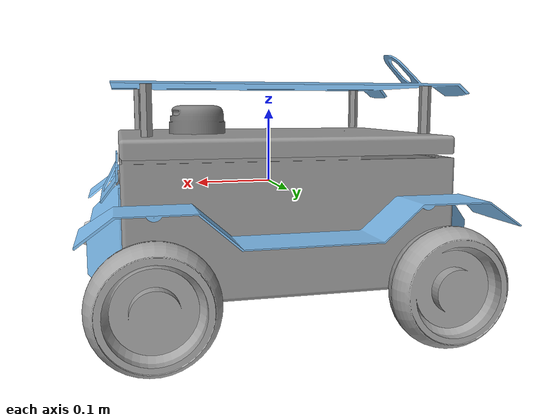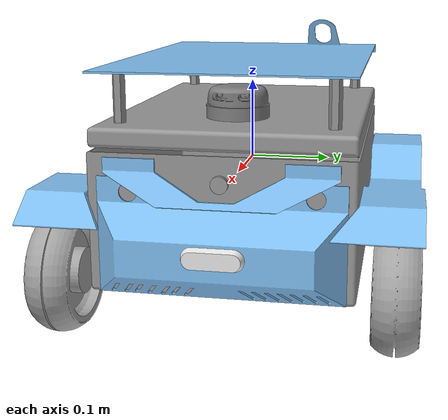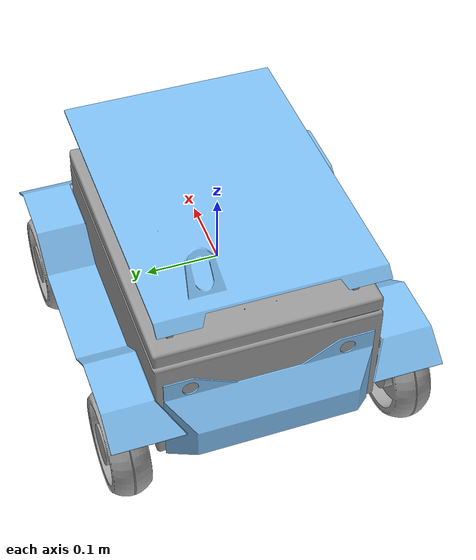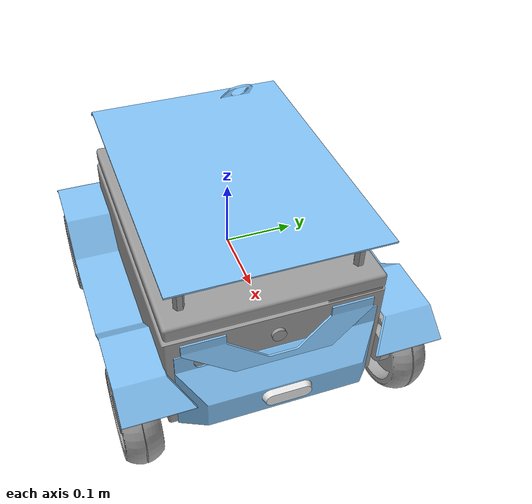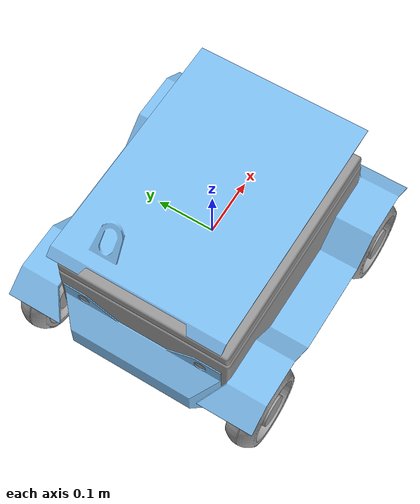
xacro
<robot name="solverbot" xmlns:xacro="http://www.ros.org/wiki/xacro">
  <!-- over here we include the file that defines extra Gazebo options and motion control driver -->
  <xacro:include filename="inertial_macros.xacro"/>
  <xacro:include filename="lidar.xacro"/>
  <xacro:include filename="solver_body.xacro"/>
  <xacro:include filename="camera.xacro"/>

</robot>

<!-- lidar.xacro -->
<robot  xmlns:xacro="http://www.ros.org/wiki/xacro">

  <xacro:property name="pi_const" value="3.14159265"/>

  <joint name="laser_joint" type="fixed">
    <origin xyz="0.1 0 0.095" rpy="0.0 0.0 0"/>
    <parent link="body_link"/>
    <child link="laser_frame"/>
    <axis xyz="0.0 0.0 0.0"/>
  </joint>
  <link name="laser_frame">
    <visual>
      <geometry>
        <mesh filename="package://solver_description/meshes/lidar_am12.stl"/>
      </geometry>
      <origin rpy="0 0 ${pi_const/2}" xyz="0 0 -0.03"/>
      <material name="red">
        <color rgba="0.5 0.5 0.5 1.0"/>
      </material>
    </visual>
    <collision>
      <geometry>
        <cylinder radius="0.05" length="0.04"/>
      </geometry>
    </collision>
    <xacro:inertial_cylinder mass="0.1" length="0.04" radius="0.05">
      <origin xyz="0.0 0.0 0.0" rpy="0.0 0.0 0.0"/>

    </xacro:inertial_cylinder>

  </link>
  <gazebo reference="laser_frame">
    <material>Gazebo/Grey</material>
    <sensor name="laser_frame" type="ray">
      <pose>0 0 0 0 0 0</pose>
      <visualize>true</visualize>
      <update_rate>10</update_rate>
      <ray>
        <scan>
          <horizontal>
            <samples>720</samples>
            <resolution>1</resolution>
            <min_angle>-3.14</min_angle>
            <max_angle>3.14</max_angle>
          </horizontal>
        </scan>
        <range>
          <min>0.4</min>
          <max>10</max>
          <resolution>0.01</resolution>
        </range>
      </ray>
      <plugin name="laser_controller" filename="libgazebo_ros_laser.so">
        <topicName>scan</topicName>
        <robotNamespace>/</robotNamespace>
        <frameName>laser_frame</frameName>
      </plugin>
    </sensor>
  </gazebo>
</robot>

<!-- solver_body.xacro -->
<robot name="solverBot_body" xmlns:xacro="http://www.ros.org/wiki/xacro">

  <!-- constants mio -->

  <xacro:property name="pi_const" value="3.14159265"/>

  <!-- Body dimensions -->

  <xacro:property name="body_link_x_dim" value="0.429"/>
  <xacro:property name="body_link_y_dim" value="0.335"/>
  <xacro:property name="body_link_z_dim" value="0.346"/>
  <xacro:property name="body_volume" value="${body_link_x_dim * body_link_y_dim * body_link_z_dim}"/>

  <!-- wheel dimensions -->

  <xacro:property name="wheel_link_radius" value="0.0755"/>
  <xacro:property name="wheel_link_length" value="0.055"/>
  <xacro:property name="wheel_link_z_location" value="-0.110"/>
  <xacro:property name="wheel_link_radius_sq" value="${wheel_link_radius * wheel_link_radius}"/>

  <xacro:property name="wheel_volume" value="${pi_const * wheel_link_radius_sq * wheel_link_length }"/>
  <xacro:property name="wheel_mesh" value="package://solver_description/meshes/wheelv3.dae"/>

  <!-- material density -->

  <xacro:property name="body_density" value="131.20"/>
  <xacro:property name="wheel_density" value="837.23"/>

  <!-- robot body and wheel mass -->

  <xacro:property name="body_mass" value="${body_density * body_volume}"/>
  <xacro:property name="wheel_mass" value="${wheel_density * wheel_volume}"/>

  <!-- moments of inertia of the wheel -->

  <xacro:property name="Iz_wheel" value="${0.5 * wheel_mass * wheel_link_radius_sq}"/>
  <xacro:property name="I_wheel" value="-${(1.0/12.0) * wheel_mass * (3.0 * wheel_link_radius_sq + wheel_link_length * wheel_link_length)}"/>

  <!-- This macro defines the complete inertial section of the wheel -->
  <!-- it's used later in the code -->

  <xacro:macro name="inertia_wheel">
      <inertial>
          <origin rpy="0 0 0" xyz="0 0 0"/>
          <mass value="${wheel_mass}"/>
          <inertia ixx="0.0013393845833333333" ixy="0.0" ixz="0.0" iyy="0.0013393845833333333" iyz="0.0" izz="0.0023371024999999995"/>
      </inertial>

  </xacro:macro>

  <!-- over here we include the file that defines extra Gazebo options and motion control driver -->
  <xacro:include filename="robot.gazebo"/>

  <!-- from here link and joints definitions -->

  <!-- define this dummy or Gazebo will complain -->
  <link name="dummy">
  </link>

  <joint name="dummy_joint" type="fixed" >
      <parent link="dummy"/>
      <child  link="body_link" />
  </joint>

  <!-- from here body link and joints definitions -->

  <!-- This is the body of the robot -->
  <link name="body_link">
        <visual>
            <geometry>
                <mesh filename="package://solver_description/meshes/baseCaja.dae" />
            </geometry>
            <origin rpy="0 0 -1.5708" xyz="0 0 0"/>
        </visual>
        <visual>
            <geometry>
                <mesh filename="package://solver_description/meshes/tapacaja.stl" />
            </geometry>
            <origin rpy="0 0 -1.5708" xyz="0 0 0"/>

        </visual>
        <visual>
            <geometry>
                <mesh filename="package://solver_description/meshes/screw_hex.dae" />
            </geometry>
            <origin rpy="0 0 -1.5708" xyz="0 0 0"/>

        </visual>
      <collision>
          <geometry>
              <box size="${body_link_x_dim} ${body_link_y_dim} ${body_link_z_dim}" />
          </geometry>
          <origin rpy="0 0 0" xyz="0 0 0"/>
      </collision>
      <inertial>
          <origin rpy="0 0 0" xyz="0 0 0"/>
          <mass value="${body_mass}"/>
          <inertia
          ixx="${(1/12) * body_mass * (body_link_y_dim * body_link_y_dim + body_link_z_dim*body_link_z_dim)}"
          iyy="${(1/12) * body_mass * (body_link_x_dim * body_link_x_dim + body_link_z_dim*body_link_z_dim)}"
          izz="${(1/12) * body_mass * (body_link_y_dim * body_link_x_dim + body_link_z_dim*body_link_x_dim)}"
          ixy="0" ixz="0" iyz="0" />
      </inertial>
      <!-- close body link -->
  </link>

  <link name="aileron">
    <visual>
        <geometry>
            <mesh filename="package://solver_description/meshes/aleron_frontal.dae" />
        </geometry>
        <origin rpy="0 0 -1.5708" xyz="0 0 0"/>
    </visual>
    <visual>
        <geometry>
            <mesh filename="package://solver_description/meshes/Fender_R.dae" />
        </geometry>
        <origin rpy="0 0 -1.5708" xyz="0 0 0"/>
    </visual>
    <visual>
        <geometry>
            <mesh filename="package://solver_description/meshes/Fender_L.dae" />
        </geometry>
        <origin rpy="0 0 -1.5708" xyz="0 0 0"/>
    </visual>
    <visual>
        <geometry>
            <mesh filename="package://solver_description/meshes/cover.dae" />
        </geometry>
        <origin rpy="0 0 -1.5708" xyz="0 0 0"/>
    </visual>
    <visual>
        <geometry>
            <mesh filename="package://solver_description/meshes/bumpers.dae" />
        </geometry>
        <origin rpy="0 0 1.5708" xyz="0 0 0"/>
    </visual>
  <collision>
      <geometry>
          <box size="${body_link_x_dim} ${body_link_y_dim} ${body_link_z_dim}" />
      </geometry>
      <origin rpy="0 0 0" xyz="0 0 0"/>
  </collision>
  <!-- close body link -->
</link>
<joint name="aileron_joint" type="fixed" >
    <parent link="dummy"/>
    <child  link="aileron" />
</joint>
<link name="light">
    <visual>
        <geometry>
            <mesh filename="package://solver_description/meshes/Front_Light.dae" />
        </geometry>
        <origin rpy="0 0 1.5708" xyz="-0.025 0 0"/>
    </visual>
  <collision>
      <geometry>
          <box size="${body_link_x_dim} ${body_link_y_dim} ${body_link_z_dim}" />
      </geometry>
      <origin rpy="0 0 0" xyz="0 0 0"/>
  </collision>
  <!-- close body link -->
</link>
<joint name="light_joint" type="fixed" >
    <parent link="dummy"/>
    <child  link="light" />
</joint>
  <!-- finish here body link and joints definitions -->

  <!-- start here wheels link and joints definitions -->

  <xacro:include filename="solver_wheel.xacro"/>

  <!-- This is the back right wheel of the robot -->
  <xacro:solver_wheel wheel_prefix="1" />

  <!-- This is the back left wheel of the robot -->
  <xacro:solver_wheel wheel_prefix="2" link_visual_origin_r ="1.570795" joint_origin_x="${body_link_x_dim/2-1.2*wheel_link_radius +0.05}" joint_origin_y="${body_link_y_dim/2 +wheel_link_length/2 }" joint_origin_yaw="${-pi_const/2}" joint_axis="-1"/>

  <!-- This is the front rigth wheel of the robot -->
  <xacro:solver_wheel wheel_prefix="3" link_visual_origin_r ="1.570795" joint_origin_x="${body_link_x_dim/2-1.2*wheel_link_radius +0.05}" />

  <!-- This is the front left wheel of the robot -->
  <xacro:solver_wheel wheel_prefix="4" link_visual_origin_r ="1.570795" joint_origin_y="${body_link_y_dim/2 +wheel_link_length/2}"  joint_origin_yaw="${-pi_const/2}" joint_axis="-1"/>

</robot>

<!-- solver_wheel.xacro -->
<robot xmlns:xacro="http://ros.org/wiki/xacro" name="solver_wheel">

	<xacro:macro name="solver_wheel" params="wheel_prefix link_visual_origin_r:=1.570795 joint_origin_x:=${-body_link_x_dim/2+1.2*wheel_link_radius -0.05} joint_origin_y:=${-body_link_y_dim/2 -wheel_link_length/2 } joint_origin_yaw:=${pi_const/2} joint_axis:=1">

		<joint name="wheel${wheel_prefix}_joint" type="continuous" >
			<parent link="body_link"/>
			<child  link="wheel${wheel_prefix}_link" />
			<origin xyz="${joint_origin_x} ${joint_origin_y} ${wheel_link_z_location }" rpy="0 0 ${joint_origin_yaw}" />
			<axis xyz="${joint_axis} 0 0"/>
			<limit effort="1000" velocity="1000"/>
			<dynamics damping="1.0" friction="1.0"/>
		</joint>
		<link name="wheel${wheel_prefix}_link">
			<visual>
				<origin rpy="${link_visual_origin_r} 0 0" xyz="0 0 0"/>
				<geometry>
					<mesh filename="${wheel_mesh}"/>
				</geometry>
			</visual>
			<collision>
				<origin rpy="1.570795 0 0" xyz="0 0 0"/>
				<geometry>
					<mesh filename="${wheel_mesh}"/>
				</geometry>
			</collision>
			<xacro:inertia_wheel/>
		</link>

	</xacro:macro>
</robot>

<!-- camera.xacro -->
<robot  xmlns:xacro="http://www.ros.org/wiki/xacro">

  <xacro:property name="pi_const" value="3.14159265"/>
  <xacro:property name="camera_link" value="0.2" />

  <joint name="camera_joint" type="fixed">
    <axis xyz="0 1 0.5" />
    <origin xyz="${camera_link} 0 0.01" rpy="0 0 0"/>
    <parent link="body_link"/>
    <child link="camera_link"/>
  </joint>

  <!-- Camera -->
  <link name="camera_link">
    <collision>
      <origin xyz="0 0 0" rpy="0 0 0"/>
      <geometry>
        <cylinder radius="0.01" length="0.02"/>
      </geometry>
    </collision>

    <visual>
      <origin xyz="0 0 0" rpy="0 ${pi_const/2} 0"/>
      <geometry>
        <cylinder radius="0.01" length="0.02"/>
      </geometry>
      <material name="grey">Gazebo/Grey</material>
    </visual>

    <xacro:inertial_cylinder mass="0.1" length="0.02" radius="0.01">
      <origin xyz="0.0 0.0 0.0" rpy="0.0 0.0 0.0"/>
    </xacro:inertial_cylinder>
  </link>

   <!-- camera -->
   <gazebo reference="camera_link">
    <sensor type="camera" name="camera1">
      <update_rate>30.0</update_rate>
      <camera name="head">
        <horizontal_fov>1.3962634</horizontal_fov>
        <image>
          <width>1920</width>
          <height>1080</height>
          <format>R8G8B8</format>
          <!-- 1920*1080 = 1080P camera -->
        </image>
        <clip>
          <near>0.02</near>
          <far>300</far>
        </clip>
        <noise>
          <type>gaussian</type>
          <!-- Noise is sampled independently per pixel on each frame.
               That pixel's noise value is added to each of its color
               channels, which at that point lie in the range [0,1]. -->
          <mean>0.0</mean>
          <stddev>0.007</stddev>
        </noise>
      </camera>
      <plugin name="camera_controller" filename="libgazebo_ros_camera.so">
        <alwaysOn>true</alwaysOn>
        <updateRate>30</updateRate>
        <cameraName>rrbot/camera1</cameraName>
        <imageTopicName>image_raw</imageTopicName>
        <cameraInfoTopicName>camera_info</cameraInfoTopicName>
        <frameName>camera_link</frameName>
        <hackBaseline>0.07</hackBaseline>
        <distortionK1>0.0</distortionK1>
        <distortionK2>0.0</distortionK2>
        <distortionK3>0.0</distortionK3>
        <distortionT1>0.0</distortionT1>
        <distortionT2>0.0</distortionT2>
      </plugin>
    </sensor>
  </gazebo>
</robot>
